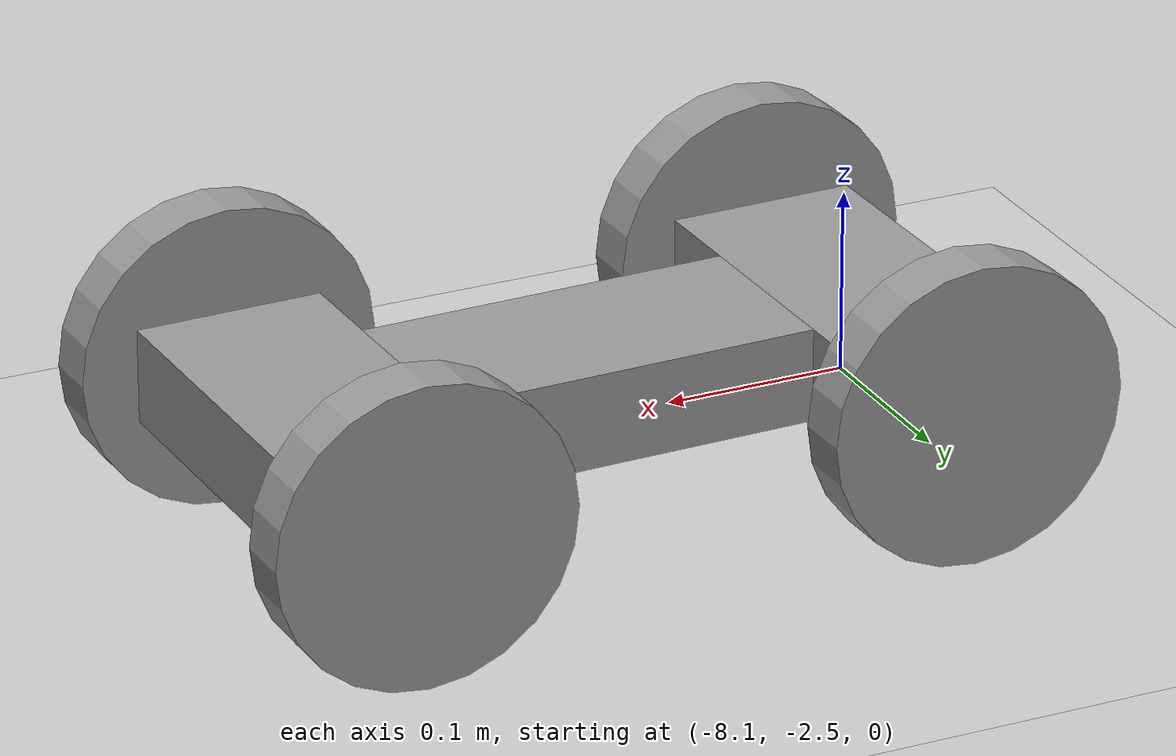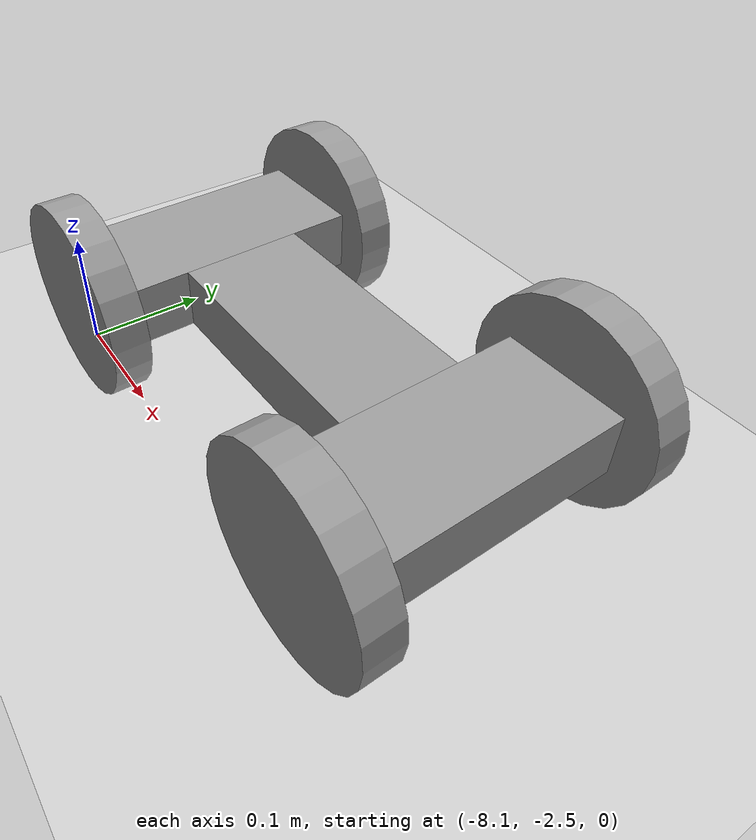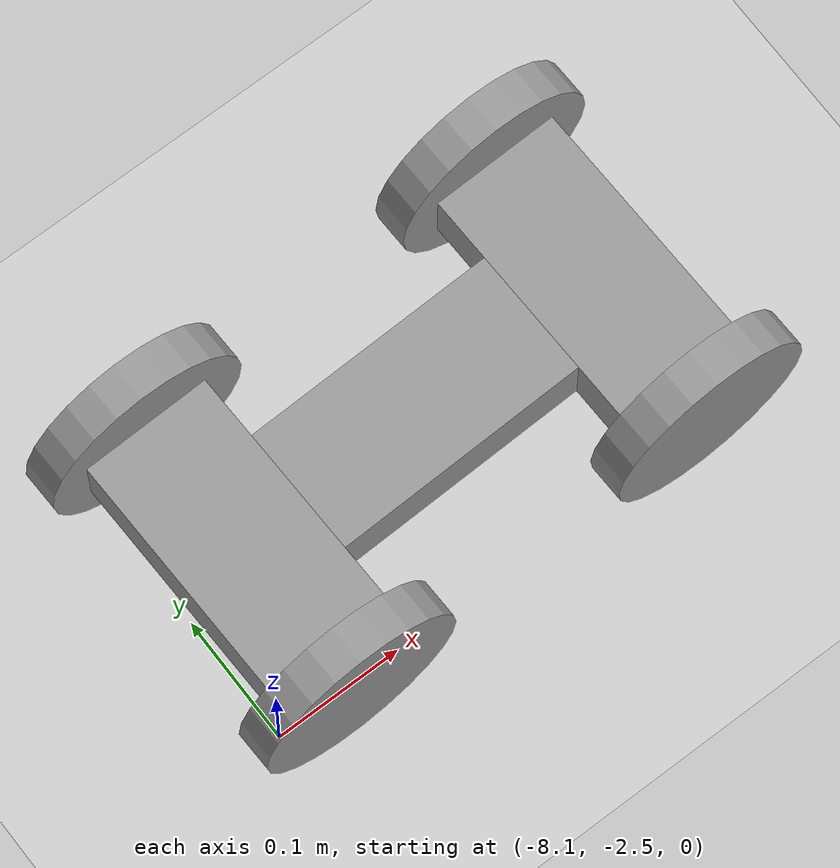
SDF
<sdf version="1.6">
 <world name="default">
  <model name="ground_plane">
   <static>1</static>
   <link name="link">
    <collision name="collision">
     <geometry><plane><normal>0 0 1</normal><size>100 100</size></plane></geometry>
     <surface><friction><ode><mu>100</mu><mu2>50</mu2></ode></friction></surface>
    </collision>
    <visual name="visual">
     <cast_shadows>0</cast_shadows>
     <geometry><plane><normal>0 0 1</normal><size>100 100</size></plane></geometry>
     <material>
      <script><uri>file://media/materials/scripts/gazebo.material</uri><name>Gazebo/Grey</name></script>
     </material>
    </visual>
   </link>
  </model>
  <model name="robot_0">
   <link name="link_0">
    <pose>-0.15 0 -0 0 -0 0</pose>
    <inertial>
     <mass>1</mass>
     <inertia>
      <ixx>0.166667</ixx>
      <ixy>0</ixy>
      <ixz>0</ixz>
      <iyy>0.166667</iyy>
      <iyz>0</iyz>
      <izz>0.166667</izz>
     </inertia>
    </inertial>
    <visual name="visual">
     <geometry><box><size>0.1 0.2 0.05</size></box></geometry>
     <material>
      <lighting>1</lighting>
      <script><uri>file://media/materials/scripts/gazebo.material</uri><name>Gazebo/Grey</name></script>
      <ambient>0.3 0.3 0.3 1</ambient>
      <diffuse>0.7 0.7 0.7 1</diffuse>
      <specular>0.01 0.01 0.01 1</specular>
      <emissive>0 0 0 1</emissive>
      <shader type="vertex"><normal_map>__default__</normal_map></shader>
     </material>
    </visual>
    <collision name="collision">
     <geometry><box><size>0.1 0.2 0.05</size></box></geometry>
     <surface>
      <friction>
       <ode><mu>1</mu><mu2>1</mu2><fdir1>0 0 0</fdir1><slip1>0</slip1><slip2>0</slip2></ode>
       <torsional>
        <coefficient>1</coefficient>
        <patch_radius>0</patch_radius>
        <surface_radius>0</surface_radius>
        <use_patch_radius>1</use_patch_radius>
        <ode><slip>0</slip></ode>
       </torsional>
      </friction>
      <bounce><restitution_coefficient>0</restitution_coefficient><threshold>1e+06</threshold></bounce>
      <contact>
       <collide_without_contact>0</collide_without_contact>
       <collide_without_contact_bitmask>1</collide_without_contact_bitmask>
       <collide_bitmask>1</collide_bitmask>
       <ode>
        <soft_cfm>0</soft_cfm>
        <soft_erp>0.2</soft_erp>
        <kp>1e+13</kp>
        <kd>1</kd>
        <max_vel>0.01</max_vel>
        <min_depth>0</min_depth>
       </ode>
       <bullet>
        <split_impulse>1</split_impulse>
        <split_impulse_penetration_threshold>-0.01</split_impulse_penetration_threshold>
        <soft_cfm>0</soft_cfm>
        <soft_erp>0.2</soft_erp>
        <kp>1e+13</kp>
        <kd>1</kd>
       </bullet>
      </contact>
     </surface>
    </collision>
   </link>
   <link name="link_0_clone">
    <pose>0.15 0 -0 0 -0 0</pose>
    <inertial>
     <mass>1</mass>
     <inertia>
      <ixx>0.166667</ixx>
      <ixy>0</ixy>
      <ixz>0</ixz>
      <iyy>0.166667</iyy>
      <iyz>0</iyz>
      <izz>0.166667</izz>
     </inertia>
    </inertial>
    <visual name="visual">
     <geometry><box><size>0.1 0.2 0.05</size></box></geometry>
     <material>
      <lighting>1</lighting>
      <script><uri>file://media/materials/scripts/gazebo.material</uri><name>Gazebo/Grey</name></script>
      <ambient>0.3 0.3 0.3 1</ambient>
      <diffuse>0.7 0.7 0.7 1</diffuse>
      <specular>0.01 0.01 0.01 1</specular>
      <emissive>0 0 0 1</emissive>
      <shader type="vertex"><normal_map>__default__</normal_map></shader>
     </material>
    </visual>
    <collision name="collision">
     <geometry><box><size>0.1 0.2 0.05</size></box></geometry>
     <surface>
      <friction>
       <ode><mu>1</mu><mu2>1</mu2><fdir1>0 0 0</fdir1><slip1>0</slip1><slip2>0</slip2></ode>
       <torsional>
        <coefficient>1</coefficient>
        <patch_radius>0</patch_radius>
        <surface_radius>0</surface_radius>
        <use_patch_radius>1</use_patch_radius>
        <ode><slip>0</slip></ode>
       </torsional>
      </friction>
      <bounce><restitution_coefficient>0</restitution_coefficient><threshold>1e+06</threshold></bounce>
      <contact>
       <collide_without_contact>0</collide_without_contact>
       <collide_without_contact_bitmask>1</collide_without_contact_bitmask>
       <collide_bitmask>1</collide_bitmask>
       <ode>
        <soft_cfm>0</soft_cfm>
        <soft_erp>0.2</soft_erp>
        <kp>1e+13</kp>
        <kd>1</kd>
        <max_vel>0.01</max_vel>
        <min_depth>0</min_depth>
       </ode>
       <bullet>
        <split_impulse>1</split_impulse>
        <split_impulse_penetration_threshold>-0.01</split_impulse_penetration_threshold>
        <soft_cfm>0</soft_cfm>
        <soft_erp>0.2</soft_erp>
        <kp>1e+13</kp>
        <kd>1</kd>
       </bullet>
      </contact>
     </surface>
    </collision>
   </link>
   <link name="link_1">
    <inertial>
     <mass>1</mass>
     <inertia>
      <ixx>0.166667</ixx>
      <ixy>0</ixy>
      <ixz>0</ixz>
      <iyy>0.166667</iyy>
      <iyz>0</iyz>
      <izz>0.166667</izz>
     </inertia>
    </inertial>
    <visual name="visual">
     <geometry><box><size>0.2 0.1 0.05</size></box></geometry>
     <material>
      <lighting>1</lighting>
      <script><uri>file://media/materials/scripts/gazebo.material</uri><name>Gazebo/Grey</name></script>
      <ambient>0.3 0.3 0.3 1</ambient>
      <diffuse>0.7 0.7 0.7 1</diffuse>
      <specular>0.01 0.01 0.01 1</specular>
      <emissive>0 0 0 1</emissive>
      <shader type="vertex"><normal_map>__default__</normal_map></shader>
     </material>
    </visual>
    <collision name="collision">
     <geometry><box><size>0.2 0.1 0.05</size></box></geometry>
     <surface>
      <friction>
       <ode><mu>1</mu><mu2>1</mu2><fdir1>0 0 0</fdir1><slip1>0</slip1><slip2>0</slip2></ode>
       <torsional>
        <coefficient>1</coefficient>
        <patch_radius>0</patch_radius>
        <surface_radius>0</surface_radius>
        <use_patch_radius>1</use_patch_radius>
        <ode><slip>0</slip></ode>
       </torsional>
      </friction>
      <bounce><restitution_coefficient>0</restitution_coefficient><threshold>1e+06</threshold></bounce>
      <contact>
       <collide_without_contact>0</collide_without_contact>
       <collide_without_contact_bitmask>1</collide_without_contact_bitmask>
       <collide_bitmask>1</collide_bitmask>
       <ode>
        <soft_cfm>0</soft_cfm>
        <soft_erp>0.2</soft_erp>
        <kp>1e+13</kp>
        <kd>1</kd>
        <max_vel>0.01</max_vel>
        <min_depth>0</min_depth>
       </ode>
       <bullet>
        <split_impulse>1</split_impulse>
        <split_impulse_penetration_threshold>-0.01</split_impulse_penetration_threshold>
        <soft_cfm>0</soft_cfm>
        <soft_erp>0.2</soft_erp>
        <kp>1e+13</kp>
        <kd>1</kd>
       </bullet>
      </contact>
     </surface>
    </collision>
   </link>
   <link name="link_2">
    <pose>-0.15 -0.115008 -0 1.5707 -0 0</pose>
    <inertial>
     <mass>1</mass>
     <inertia><ixx>0.145833</ixx><ixy>0</ixy><ixz>0</ixz><iyy>0.145833</iyy><iyz>0</iyz><izz>0.125</izz></inertia>
    </inertial>
    <visual name="visual">
     <geometry><cylinder><radius>0.08</radius><length>0.03</length></cylinder></geometry>
     <material>
      <lighting>1</lighting>
      <script><uri>file://media/materials/scripts/gazebo.material</uri><name>Gazebo/Grey</name></script>
      <ambient>0.3 0.3 0.3 1</ambient>
      <diffuse>0.7 0.7 0.7 1</diffuse>
      <specular>0.01 0.01 0.01 1</specular>
      <emissive>0 0 0 1</emissive>
      <shader type="vertex"><normal_map>__default__</normal_map></shader>
     </material>
    </visual>
    <collision name="collision">
     <geometry><cylinder><radius>0.08</radius><length>0.03</length></cylinder></geometry>
     <surface>
      <friction>
       <ode><mu>1</mu><mu2>1</mu2><fdir1>0 0 0</fdir1><slip1>0</slip1><slip2>0</slip2></ode>
       <torsional>
        <coefficient>1</coefficient>
        <patch_radius>0</patch_radius>
        <surface_radius>0</surface_radius>
        <use_patch_radius>1</use_patch_radius>
        <ode><slip>0</slip></ode>
       </torsional>
      </friction>
      <bounce><restitution_coefficient>0</restitution_coefficient><threshold>1e+06</threshold></bounce>
      <contact>
       <collide_without_contact>0</collide_without_contact>
       <collide_without_contact_bitmask>1</collide_without_contact_bitmask>
       <collide_bitmask>1</collide_bitmask>
       <ode>
        <soft_cfm>0</soft_cfm>
        <soft_erp>0.2</soft_erp>
        <kp>1e+13</kp>
        <kd>1</kd>
        <max_vel>0.01</max_vel>
        <min_depth>0</min_depth>
       </ode>
       <bullet>
        <split_impulse>1</split_impulse>
        <split_impulse_penetration_threshold>-0.01</split_impulse_penetration_threshold>
        <soft_cfm>0</soft_cfm>
        <soft_erp>0.2</soft_erp>
        <kp>1e+13</kp>
        <kd>1</kd>
       </bullet>
      </contact>
     </surface>
    </collision>
   </link>
   <link name="link_2_clone">
    <pose>-0.15 0.115008 -0 1.5707 -0 0</pose>
    <inertial>
     <mass>1</mass>
     <inertia><ixx>0.145833</ixx><ixy>0</ixy><ixz>0</ixz><iyy>0.145833</iyy><iyz>0</iyz><izz>0.125</izz></inertia>
    </inertial>
    <visual name="visual">
     <geometry><cylinder><radius>0.08</radius><length>0.03</length></cylinder></geometry>
     <material>
      <lighting>1</lighting>
      <script><uri>file://media/materials/scripts/gazebo.material</uri><name>Gazebo/Grey</name></script>
      <ambient>0.3 0.3 0.3 1</ambient>
      <diffuse>0.7 0.7 0.7 1</diffuse>
      <specular>0.01 0.01 0.01 1</specular>
      <emissive>0 0 0 1</emissive>
      <shader type="vertex"><normal_map>__default__</normal_map></shader>
     </material>
    </visual>
    <collision name="collision">
     <geometry><cylinder><radius>0.08</radius><length>0.03</length></cylinder></geometry>
     <surface>
      <friction>
       <ode><mu>1</mu><mu2>1</mu2><fdir1>0 0 0</fdir1><slip1>0</slip1><slip2>0</slip2></ode>
       <torsional>
        <coefficient>1</coefficient>
        <patch_radius>0</patch_radius>
        <surface_radius>0</surface_radius>
        <use_patch_radius>1</use_patch_radius>
        <ode><slip>0</slip></ode>
       </torsional>
      </friction>
      <bounce><restitution_coefficient>0</restitution_coefficient><threshold>1e+06</threshold></bounce>
      <contact>
       <collide_without_contact>0</collide_without_contact>
       <collide_without_contact_bitmask>1</collide_without_contact_bitmask>
       <collide_bitmask>1</collide_bitmask>
       <ode>
        <soft_cfm>0</soft_cfm>
        <soft_erp>0.2</soft_erp>
        <kp>1e+13</kp>
        <kd>1</kd>
        <max_vel>0.01</max_vel>
        <min_depth>0</min_depth>
       </ode>
       <bullet>
        <split_impulse>1</split_impulse>
        <split_impulse_penetration_threshold>-0.01</split_impulse_penetration_threshold>
        <soft_cfm>0</soft_cfm>
        <soft_erp>0.2</soft_erp>
        <kp>1e+13</kp>
        <kd>1</kd>
       </bullet>
      </contact>
     </surface>
    </collision>
   </link>
   <link name="link_2_clone_clone">
    <pose>0.15 -0.115008 -0 1.5707 -0 0</pose>
    <inertial>
     <mass>1</mass>
     <inertia><ixx>0.145833</ixx><ixy>0</ixy><ixz>0</ixz><iyy>0.145833</iyy><iyz>0</iyz><izz>0.125</izz></inertia>
    </inertial>
    <visual name="visual">
     <geometry><cylinder><radius>0.08</radius><length>0.03</length></cylinder></geometry>
     <material>
      <lighting>1</lighting>
      <script><uri>file://media/materials/scripts/gazebo.material</uri><name>Gazebo/Grey</name></script>
      <ambient>0.3 0.3 0.3 1</ambient>
      <diffuse>0.7 0.7 0.7 1</diffuse>
      <specular>0.01 0.01 0.01 1</specular>
      <emissive>0 0 0 1</emissive>
      <shader type="vertex"><normal_map>__default__</normal_map></shader>
     </material>
    </visual>
    <collision name="collision">
     <geometry><cylinder><radius>0.08</radius><length>0.03</length></cylinder></geometry>
     <surface>
      <friction>
       <ode><mu>1</mu><mu2>1</mu2><fdir1>0 0 0</fdir1><slip1>0</slip1><slip2>0</slip2></ode>
       <torsional>
        <coefficient>1</coefficient>
        <patch_radius>0</patch_radius>
        <surface_radius>0</surface_radius>
        <use_patch_radius>1</use_patch_radius>
        <ode><slip>0</slip></ode>
       </torsional>
      </friction>
      <bounce><restitution_coefficient>0</restitution_coefficient><threshold>1e+06</threshold></bounce>
      <contact>
       <collide_without_contact>0</collide_without_contact>
       <collide_without_contact_bitmask>1</collide_without_contact_bitmask>
       <collide_bitmask>1</collide_bitmask>
       <ode>
        <soft_cfm>0</soft_cfm>
        <soft_erp>0.2</soft_erp>
        <kp>1e+13</kp>
        <kd>1</kd>
        <max_vel>0.01</max_vel>
        <min_depth>0</min_depth>
       </ode>
       <bullet>
        <split_impulse>1</split_impulse>
        <split_impulse_penetration_threshold>-0.01</split_impulse_penetration_threshold>
        <soft_cfm>0</soft_cfm>
        <soft_erp>0.2</soft_erp>
        <kp>1e+13</kp>
        <kd>1</kd>
       </bullet>
      </contact>
     </surface>
    </collision>
   </link>
   <link name="link_2_clone_clone_0">
    <pose>0.15 0.115008 -0 1.5707 -0 0</pose>
    <inertial>
     <mass>1</mass>
     <inertia><ixx>0.145833</ixx><ixy>0</ixy><ixz>0</ixz><iyy>0.145833</iyy><iyz>0</iyz><izz>0.125</izz></inertia>
    </inertial>
    <visual name="visual">
     <geometry><cylinder><radius>0.08</radius><length>0.03</length></cylinder></geometry>
     <material>
      <lighting>1</lighting>
      <script><uri>file://media/materials/scripts/gazebo.material</uri><name>Gazebo/Grey</name></script>
      <ambient>0.3 0.3 0.3 1</ambient>
      <diffuse>0.7 0.7 0.7 1</diffuse>
      <specular>0.01 0.01 0.01 1</specular>
      <emissive>0 0 0 1</emissive>
      <shader type="vertex"><normal_map>__default__</normal_map></shader>
     </material>
    </visual>
    <collision name="collision">
     <geometry><cylinder><radius>0.08</radius><length>0.03</length></cylinder></geometry>
     <surface>
      <friction>
       <ode><mu>1</mu><mu2>1</mu2><fdir1>0 0 0</fdir1><slip1>0</slip1><slip2>0</slip2></ode>
       <torsional>
        <coefficient>1</coefficient>
        <patch_radius>0</patch_radius>
        <surface_radius>0</surface_radius>
        <use_patch_radius>1</use_patch_radius>
        <ode><slip>0</slip></ode>
       </torsional>
      </friction>
      <bounce><restitution_coefficient>0</restitution_coefficient><threshold>1e+06</threshold></bounce>
      <contact>
       <collide_without_contact>0</collide_without_contact>
       <collide_without_contact_bitmask>1</collide_without_contact_bitmask>
       <collide_bitmask>1</collide_bitmask>
       <ode>
        <soft_cfm>0</soft_cfm>
        <soft_erp>0.2</soft_erp>
        <kp>1e+13</kp>
        <kd>1</kd>
        <max_vel>0.01</max_vel>
        <min_depth>0</min_depth>
       </ode>
       <bullet>
        <split_impulse>1</split_impulse>
        <split_impulse_penetration_threshold>-0.01</split_impulse_penetration_threshold>
        <soft_cfm>0</soft_cfm>
        <soft_erp>0.2</soft_erp>
        <kp>1e+13</kp>
        <kd>1</kd>
       </bullet>
      </contact>
     </surface>
    </collision>
   </link>
   <joint name="link_0_JOINT_4" type="revolute">
    <parent>link_0</parent>
    <child>link_2</child>
    <axis>
     <xyz>0 0 1</xyz>
     <use_parent_model_frame>0</use_parent_model_frame>
     <limit>
      <lower>-1.79769e+308</lower>
      <upper>1.79769e+308</upper>
      <effort>-1</effort>
      <velocity>-1</velocity>
     </limit>
     <dynamics>
      <spring_reference>0</spring_reference>
      <spring_stiffness>0</spring_stiffness>
      <damping>0</damping>
      <friction>0</friction>
     </dynamics>
    </axis>
    <physics>
     <ode><limit><cfm>0</cfm><erp>0.2</erp></limit><suspension><cfm>0</cfm><erp>0.2</erp></suspension></ode>
    </physics>
   </joint>
   <joint name="link_0_JOINT_5" type="revolute">
    <parent>link_0</parent>
    <child>link_2_clone</child>
    <axis>
     <xyz>0 0 1</xyz>
     <use_parent_model_frame>0</use_parent_model_frame>
     <limit>
      <lower>-1.79769e+308</lower>
      <upper>1.79769e+308</upper>
      <effort>-1</effort>
      <velocity>-1</velocity>
     </limit>
     <dynamics>
      <spring_reference>0</spring_reference>
      <spring_stiffness>0</spring_stiffness>
      <damping>0</damping>
     </dynamics>
    </axis>
    <physics>
     <ode><limit><cfm>0</cfm><erp>0.2</erp></limit><suspension><cfm>0</cfm><erp>0.2</erp></suspension></ode>
    </physics>
   </joint>
   <joint name="link_0_JOINT_6" type="revolute">
    <parent>link_0</parent>
    <child>link_2</child>
    <axis>
     <xyz>0 0 1</xyz>
     <use_parent_model_frame>0</use_parent_model_frame>
     <limit>
      <lower>-1.79769e+308</lower>
      <upper>1.79769e+308</upper>
      <effort>-1</effort>
      <velocity>-1</velocity>
     </limit>
     <dynamics>
      <spring_reference>0</spring_reference>
      <spring_stiffness>0</spring_stiffness>
      <damping>0</damping>
     </dynamics>
    </axis>
    <physics>
     <ode><limit><cfm>0</cfm><erp>0.2</erp></limit><suspension><cfm>0</cfm><erp>0.2</erp></suspension></ode>
    </physics>
   </joint>
   <joint name="link_0_clone_JOINT_7" type="revolute">
    <parent>link_0_clone</parent>
    <child>link_2_clone_clone</child>
    <axis>
     <xyz>0 0 1</xyz>
     <use_parent_model_frame>0</use_parent_model_frame>
     <limit>
      <lower>-1.79769e+308</lower>
      <upper>1.79769e+308</upper>
      <effort>-1</effort>
      <velocity>-1</velocity>
     </limit>
     <dynamics>
      <spring_reference>0</spring_reference>
      <spring_stiffness>0</spring_stiffness>
      <damping>0</damping>
     </dynamics>
    </axis>
    <physics>
     <ode><limit><cfm>0</cfm><erp>0.2</erp></limit><suspension><cfm>0</cfm><erp>0.2</erp></suspension></ode>
    </physics>
   </joint>
   <joint name="link_0_clone_JOINT_8" type="revolute">
    <parent>link_0_clone</parent>
    <child>link_2_clone_clone_0</child>
    <axis>
     <xyz>0 0 1</xyz>
     <use_parent_model_frame>0</use_parent_model_frame>
     <limit>
      <lower>-1.79769e+308</lower>
      <upper>1.79769e+308</upper>
      <effort>-1</effort>
      <velocity>-1</velocity>
     </limit>
     <dynamics>
      <spring_reference>0</spring_reference>
      <spring_stiffness>0</spring_stiffness>
      <damping>0</damping>
     </dynamics>
    </axis>
    <physics>
     <ode><limit><cfm>0</cfm><erp>0.2</erp></limit><suspension><cfm>0</cfm><erp>0.2</erp></suspension></ode>
    </physics>
   </joint>
   <joint name="link_1_JOINT_0" type="revolute">
    <parent>link_1</parent>
    <child>link_0</child>
    <axis>
     <xyz>1 0 0</xyz>
     <use_parent_model_frame>0</use_parent_model_frame>
     <limit>
      <lower>-1.79769e+308</lower>
      <upper>1.79769e+308</upper>
      <effort>-1</effort>
      <velocity>-1</velocity>
     </limit>
     <dynamics>
      <spring_reference>0</spring_reference>
      <spring_stiffness>0</spring_stiffness>
      <damping>0</damping>
     </dynamics>
    </axis>
    <physics>
     <ode><limit><cfm>0</cfm><erp>0.2</erp></limit><suspension><cfm>0</cfm><erp>0.2</erp></suspension></ode>
    </physics>
   </joint>
   <joint name="link_1_JOINT_1" type="revolute">
    <parent>link_1</parent>
    <child>link_0_clone</child>
    <axis>
     <xyz>1 0 0</xyz>
     <use_parent_model_frame>0</use_parent_model_frame>
     <limit>
      <lower>-1.79769e+308</lower>
      <upper>1.79769e+308</upper>
      <effort>-1</effort>
      <velocity>-1</velocity>
     </limit>
     <dynamics>
      <spring_reference>0</spring_reference>
      <spring_stiffness>0</spring_stiffness>
      <damping>0</damping>
     </dynamics>
    </axis>
    <physics>
     <ode><limit><cfm>0</cfm><erp>0.2</erp></limit><suspension><cfm>0</cfm><erp>0.2</erp></suspension></ode>
    </physics>
   </joint>
   <static>0</static>
   <pose>-7.90349 -2.39352 0.080002 -0 -2e-06 0.02655</pose>
  </model>
 </world>
</sdf>
